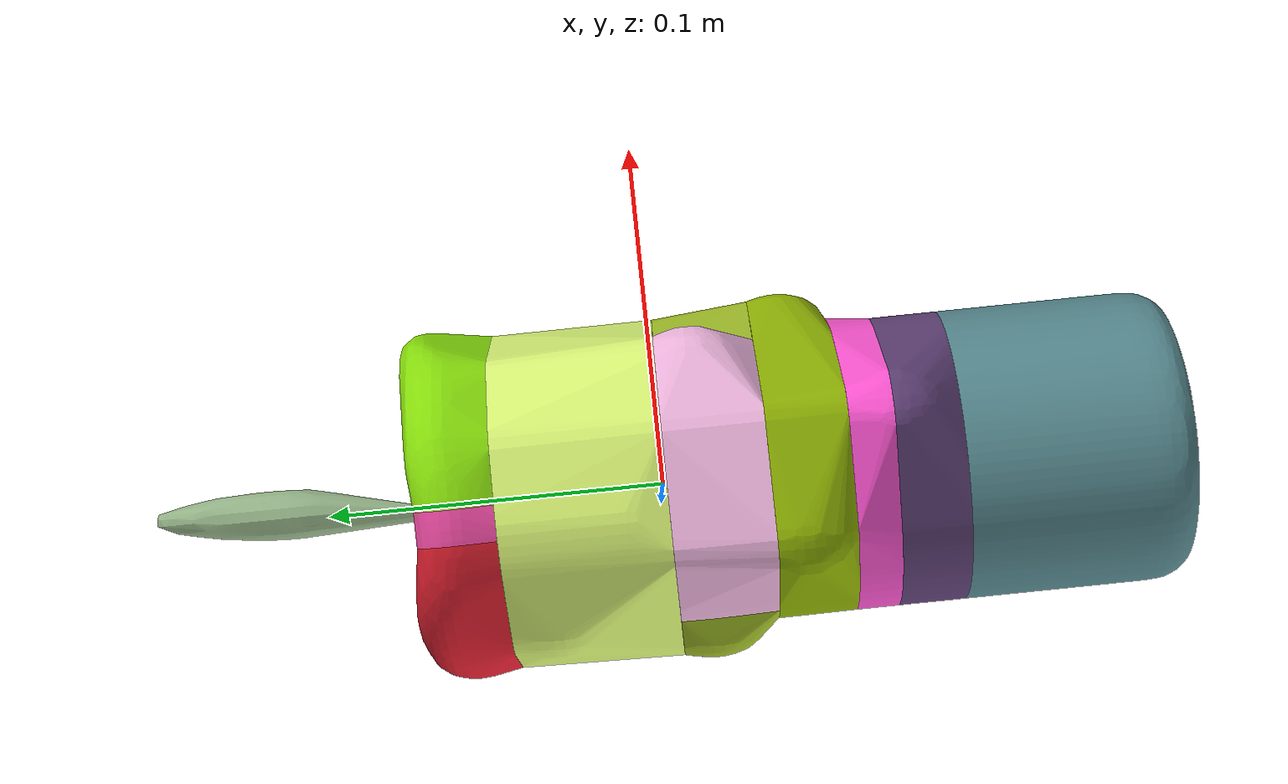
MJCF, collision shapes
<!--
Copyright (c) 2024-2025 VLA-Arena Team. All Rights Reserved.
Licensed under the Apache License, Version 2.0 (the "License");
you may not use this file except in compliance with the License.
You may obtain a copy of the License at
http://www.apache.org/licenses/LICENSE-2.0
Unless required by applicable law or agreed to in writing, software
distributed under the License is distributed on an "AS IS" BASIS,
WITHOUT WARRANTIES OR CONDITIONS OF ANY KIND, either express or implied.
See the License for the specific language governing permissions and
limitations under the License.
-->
<mujoco model="_0818030225_texture">
  <default>
    <default class="visual">
      <geom group="1" type="mesh" contype="0" conaffinity="0"/>
    </default>
    <default class="collision">
      <geom group="0" type="mesh"/>
    </default>
  </default>
  <asset>
    <texture type="2d" name="_0818030225_texture" file="_0818030225_texture.png"/>
    <material name="Material" texture="_0818030225_texture" specular="1" shininess="0.5"/>
    <mesh name="_0818030225_texture" file="_0818030225_texture.obj" scale="0.15 0.15 0.15" />
    <mesh name="_0818030225_texture_collision_0" file="_0818030225_texture_collision_0.obj" scale="0.15 0.15 0.15" />
    <mesh name="_0818030225_texture_collision_1" file="_0818030225_texture_collision_1.obj" scale="0.15 0.15 0.15" />
    <mesh name="_0818030225_texture_collision_2" file="_0818030225_texture_collision_2.obj" scale="0.15 0.15 0.15" />
    <mesh name="_0818030225_texture_collision_3" file="_0818030225_texture_collision_3.obj" scale="0.15 0.15 0.15" />
    <mesh name="_0818030225_texture_collision_4" file="_0818030225_texture_collision_4.obj" scale="0.15 0.15 0.15" />
    <mesh name="_0818030225_texture_collision_5" file="_0818030225_texture_collision_5.obj" scale="0.15 0.15 0.15" />
    <mesh name="_0818030225_texture_collision_6" file="_0818030225_texture_collision_6.obj" scale="0.15 0.15 0.15" />
    <mesh name="_0818030225_texture_collision_7" file="_0818030225_texture_collision_7.obj" scale="0.15 0.15 0.15" />
    <mesh name="_0818030225_texture_collision_8" file="_0818030225_texture_collision_8.obj" scale="0.15 0.15 0.15" />
    <mesh name="_0818030225_texture_collision_9" file="_0818030225_texture_collision_9.obj" scale="0.15 0.15 0.15" />
    <mesh name="_0818030225_texture_collision_10" file="_0818030225_texture_collision_10.obj" scale="0.15 0.15 0.15" />
    <mesh name="_0818030225_texture_collision_11" file="_0818030225_texture_collision_11.obj" scale="0.15 0.15 0.15" />
    <mesh name="_0818030225_texture_collision_12" file="_0818030225_texture_collision_12.obj" scale="0.15 0.15 0.15" />
    <mesh name="_0818030225_texture_collision_13" file="_0818030225_texture_collision_13.obj" scale="0.15 0.15 0.15" />
  </asset>
  <worldbody>
  <body>
    <body name="object">
      <geom material="Material" mesh="_0818030225_texture" density="100" class="visual"/>
      <geom mesh="_0818030225_texture_collision_0" rgba="0.5974201215425469 0.7219700792237762 0.5456328547831514 0" density="100" class="collision"/>
      <geom mesh="_0818030225_texture_collision_1" rgba="0.8661203721049806 0.9784127558215581 0.46679537590522047 0" density="100" class="collision"/>
      <geom mesh="_0818030225_texture_collision_2" rgba="0.37046293977670774 0.25143611097115204 0.46204489414135286 0" density="100" class="collision"/>
      <geom mesh="_0818030225_texture_collision_3" rgba="0.3333438140280175 0.5314930133721671 0.5569048625430173 0" density="100" class="collision"/>
      <geom mesh="_0818030225_texture_collision_4" rgba="0.9398078100289576 0.7134122007887995 0.8745457561945327 0" density="100" class="collision"/>
      <geom mesh="_0818030225_texture_collision_5" rgba="0.9796354699144338 0.32691559342152243 0.811715259483402 0" density="100" class="collision"/>
      <geom mesh="_0818030225_texture_collision_6" rgba="0.6124361793324424 0.7279041274021748 0.1480164187714459 0" density="100" class="collision"/>
      <geom mesh="_0818030225_texture_collision_7" rgba="0.5537904541691591 0.6897725628685933 0.012003845821874859 0" density="100" class="collision"/>
      <geom mesh="_0818030225_texture_collision_8" rgba="0.4404956701888253 0.7856055696057781 0.21060495836769733 0" density="100" class="collision"/>
      <geom mesh="_0818030225_texture_collision_9" rgba="0.7672792571327203 0.05620730882925973 0.050734407698803 0" density="100" class="collision"/>
      <geom mesh="_0818030225_texture_collision_10" rgba="0.5389869743263581 0.8815812615838793 0.043741514054026154 0" density="100" class="collision"/>
      <geom mesh="_0818030225_texture_collision_11" rgba="0.8742769642616712 0.122127586483473 0.18637478944045627 0" density="100" class="collision"/>
      <geom mesh="_0818030225_texture_collision_12" rgba="0.9388844239883931 0.29421660432723695 0.645515146657545 0" density="100" class="collision"/>
      <geom mesh="_0818030225_texture_collision_13" rgba="0.35491984210552474 0.5400955518682959 0.18206677765752344 0" density="100" class="collision"/>
    </body>
    <site rgba="0 0 0 0" size="0.005" pos="0 0 -0.15" name="bottom_site"/>
      <site rgba="0 0 0 0" size="0.005" pos="0 0 0" name="top_site"/>
      <site rgba="0 0 0 0" size="0.005" pos="0.05 0.05 0" name="horizontal_radius_site"/>
  </body>
  </worldbody>
</mujoco>
